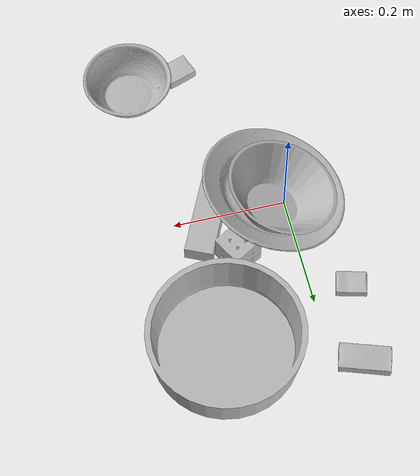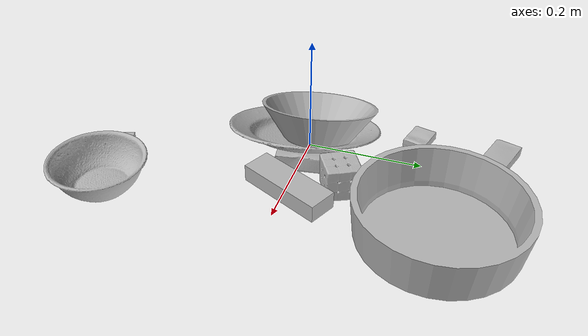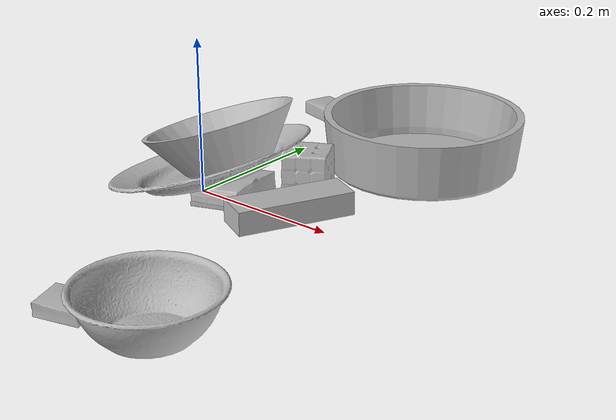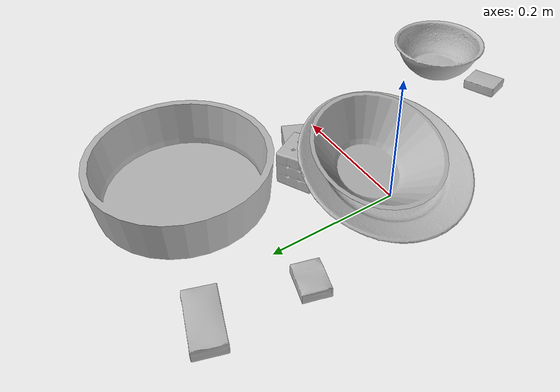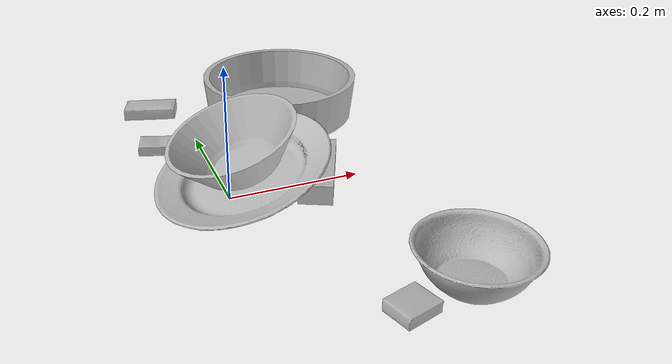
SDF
<sdf version="1.4">
  <world name="default">
    <light name="light1" type="point">
      <pose>0 0 1 0 0 0</pose>
      <diffuse>3 3 3 1</diffuse>
      <specular>3 3 3 1</specular>
    </light>
    <light name="light2" type="point">
      <pose>0 0.5 2 0 0 0</pose>
      <diffuse>1 1 1 1</diffuse>
      <specular>1 1 1 1</specular>
    </light>
    <light name="light3" type="point">
      <pose>0 0.5 2 0 0 0</pose>
      <diffuse>3 3 3 1</diffuse>
      <specular>3 3 3 1</specular>
    </light>
    <scene>
      <ambient>0.7 0.7 0.7</ambient>
    </scene>
    <model name="box1">
      <link name="link_box1">
        <collision name="default">
          <geometry>
            <mesh>
              <uri>model://sugar_box/collision_meshes/collision.obj</uri>
              <scale>0.5 0.5 0.5</scale>
            </mesh>
          </geometry>
          <surface>
            <friction>
              <ode>
                <mu>0.5</mu>
                <mu2>0.5</mu2>
              </ode>
            </friction>
          <contact>
        <ode>
            <max_vel>0</max_vel>
            <min_depth>0.0001</min_depth>
            <kp>1e8</kp>
        </ode>
    </contact></surface>
        </collision>
        <visual name="default">
          <geometry>
            <mesh>
              <uri>model://sugar_box/visual_meshes/visual.dae</uri>
              <scale>0.5 0.5 0.5</scale>
            </mesh>
          </geometry>
        </visual>
        <inertial>
          <mass>0.05968111753463745</mass>
          <pose>0.0005171863595023751 1.924554817378521e-05 -0.00018182402709499002 -0.00040462627153530444 0.0010506635220302928 0.002615378323275012</pose>
          <inertia>
            <ixx>1.2431535e-05</ixx>
            <iyy>4.0181283e-05</iyy>
            <izz>4.8101785e-05</izz>
            <ixy>0</ixy>
            <ixz>0</ixz>
            <iyz>0</iyz>
          </inertia>
        </inertial>
      </link>
      <pose>-0.05030158907175064 0.32458773255348206 0.011399301700294018 0.0007751953166375443 -0.023433188696687257 -0.3265858133132676</pose>
    </model>
    <model name="box11">
      <link name="link_box11">
        <collision name="default">
          <geometry>
            <mesh>
              <uri>model://cracker_box/collision_meshes/collision.obj</uri>
              <scale>0.25 0.25 0.25</scale>
            </mesh>
          </geometry>
          <surface>
            <friction>
              <ode>
                <mu>0.5</mu>
                <mu2>0.5</mu2>
              </ode>
            </friction>
          <contact>
        <ode>
            <max_vel>0</max_vel>
            <min_depth>0.0001</min_depth>
            <kp>1e8</kp>
        </ode>
    </contact></surface>
        </collision>
        <visual name="default">
          <geometry>
            <mesh>
              <uri>model://cracker_box/visual_meshes/visual.dae</uri>
              <scale>0.25 0.25 0.25</scale>
            </mesh>
          </geometry>
        </visual>
        <inertial>
          <mass>0.04741516709327698</mass>
          <pose>0.0002366035187151283 6.358561950037256e-05 -0.0004257383698131889 -0.00031620780351981393 -0.01110649053153066 0.0025467950031323855</pose>
          <inertia>
            <ixx>7.537689e-06</ixx>
            <iyy>1.2446206e-05</iyy>
            <izz>1.7761875e-05</izz>
            <ixy>0</ixy>
            <ixz>0</ixz>
            <iyz>0</iyz>
          </inertia>
        </inertial>
      </link>
      <pose>-0.06855029612779617 0.18576669692993164 0.009096026420593262 -0.014050366487063473 -0.005016787792297237 2.8607588222989193</pose>
    </model>
    <model name="box2">
      <link name="link_box2">
        <collision name="default">
          <geometry>
            <mesh>
              <uri>model://jenga/collision_meshes/collision.obj</uri>
              <scale>1.0 1.0 1.0</scale>
            </mesh>
          </geometry>
          <surface>
            <friction>
              <ode>
                <mu>0.5</mu>
                <mu2>0.5</mu2>
              </ode>
            </friction>
          <contact>
        <ode>
            <max_vel>0</max_vel>
            <min_depth>0.0001</min_depth>
            <kp>1e8</kp>
        </ode>
    </contact></surface>
        </collision>
        <visual name="default">
          <geometry>
            <mesh>
              <uri>model://jenga/visual_meshes/visual.dae</uri>
              <scale>1.0 1.0 1.0</scale>
            </mesh>
          </geometry>
        </visual>
        <inertial>
          <mass>0.17569443583488464</mass>
          <pose>-2.502855807051674e-07 -0.00010250010382151231 -4.0923401684267446e-05 0.0 -7.342153480750062e-07 0.0</pose>
          <inertia>
            <ixx>4.8618913e-05</ixx>
            <iyy>0.00032944046</iyy>
            <izz>0.0003517057</izz>
            <ixy>0</ixy>
            <ixz>0</ixz>
            <iyz>0</iyz>
          </inertia>
        </inertial>
      </link>
      <pose>0.1403197944164276 0.006949514150619507 0.01500012632459402 4.624020830907679e-05 -1.9794153063166026e-06 1.1277098677455002</pose>
    </model>
    <model name="box21">
      <link name="link_box21">
        <collision name="default">
          <geometry>
            <mesh>
              <uri>model://rubiks_cube/collision_meshes/collision.obj</uri>
              <scale>1.0 1.0 1.0</scale>
            </mesh>
          </geometry>
          <surface>
            <friction>
              <ode>
                <mu>0.5</mu>
                <mu2>0.5</mu2>
              </ode>
            </friction>
          <contact>
        <ode>
            <max_vel>0</max_vel>
            <min_depth>0.0001</min_depth>
            <kp>1e8</kp>
        </ode>
    </contact></surface>
        </collision>
        <visual name="default">
          <geometry>
            <mesh>
              <uri>model://rubiks_cube/visual_meshes/visual.dae</uri>
              <scale>1.0 1.0 1.0</scale>
            </mesh>
          </geometry>
        </visual>
        <inertial>
          <mass>0.16427944600582123</mass>
          <pose>2.6721041649580002e-05 5.2569666877388954e-05 -7.2643156272533815e-06 -0.05467299197426534 -0.0981400693449792 -0.034455479534688374</pose>
          <inertia>
            <ixx>9.0775415e-05</ixx>
            <iyy>9.0352085e-05</iyy>
            <izz>9.152764e-05</izz>
            <ixy>0</ixy>
            <ixz>0</ixz>
            <iyz>0</iyz>
          </inertia>
        </inertial>
      </link>
      <pose>0.10484202206134796 0.08350834250450134 0.02867896854877472 5.669571839306368e-05 2.8034650757222113e-05 -2.647301556390751</pose>
    </model>
    <model name="box3">
      <link name="link_box3">
        <collision name="default">
          <geometry>
            <mesh>
              <uri>model://gelatin_box/collision_meshes/collision.obj</uri>
              <scale>1.0 1.0 1.0</scale>
            </mesh>
          </geometry>
          <surface>
            <friction>
              <ode>
                <mu>0.5</mu>
                <mu2>0.5</mu2>
              </ode>
            </friction>
          <contact>
        <ode>
            <max_vel>0</max_vel>
            <min_depth>0.0001</min_depth>
            <kp>1e8</kp>
        </ode>
    </contact></surface>
        </collision>
        <visual name="default">
          <geometry>
            <mesh>
              <uri>model://gelatin_box/visual_meshes/visual.dae</uri>
              <scale>1.0 1.0 1.0</scale>
            </mesh>
          </geometry>
        </visual>
        <inertial>
          <mass>0.21197354793548584</mass>
          <pose>0.0004319618456065655 0.00011156872642459348 -0.0003640321083366871 -0.0010503719594585892 -0.004755818227500045 0.016440553882781303</pose>
          <inertia>
            <ixx>0.00014963602</ixx>
            <iyy>0.00010688423</iyy>
            <izz>0.00022777937</izz>
            <ixy>0</ixy>
            <ixz>0</ixz>
            <iyz>0</iyz>
          </inertia>
        </inertial>
      </link>
      <pose>0.04976006969809532 0.0029422701336443424 0.01642017252743244 -0.012907815184797276 -0.06499162353952535 0.16888368748882215</pose>
    </model>
    <model name="box31">
      <link name="link_box31">
        <collision name="default">
          <geometry>
            <mesh>
              <uri>model://pudding_box/collision_meshes/collision.obj</uri>
              <scale>0.5 0.5 0.5</scale>
            </mesh>
          </geometry>
          <surface>
            <friction>
              <ode>
                <mu>0.5</mu>
                <mu2>0.5</mu2>
              </ode>
            </friction>
          <contact>
        <ode>
            <max_vel>0</max_vel>
            <min_depth>0.0001</min_depth>
            <kp>1e8</kp>
        </ode>
    </contact></surface>
        </collision>
        <visual name="default">
          <geometry>
            <mesh>
              <uri>model://pudding_box/visual_meshes/visual.dae</uri>
              <scale>0.5 0.5 0.5</scale>
            </mesh>
          </geometry>
        </visual>
        <inertial>
          <mass>0.056796859949827194</mass>
          <pose>0.00024474109522998333 0.0004033942532259971 -0.0002594413817860186 0.005213102251005844 -0.00660379641961884 0.02007983447872704</pose>
          <inertia>
            <ixx>1.605148e-05</ixx>
            <iyy>1.0799551e-05</iyy>
            <izz>2.3704206e-05</izz>
            <ixy>0</ixy>
            <ixz>0</ixz>
            <iyz>0</iyz>
          </inertia>
        </inertial>
      </link>
      <pose>0.12253815680742264 -0.3138449788093567 0.009862903505563736 0.02234849085002439 -0.01139172174893557 1.8861843677034185</pose>
    </model>
    <model name="plate1">
      <link name="link_plate1">
        <collision name="default">
          <geometry>
            <mesh>
              <uri>model://pan_tefal/collision_meshes/collision.obj</uri>
              <scale>1.0 1.0 1.0</scale>
            </mesh>
          </geometry>
          <surface>
            <friction>
              <ode>
                <mu>0.5</mu>
                <mu2>0.5</mu2>
              </ode>
            </friction>
          <contact>
        <ode>
            <max_vel>0</max_vel>
            <min_depth>0.0001</min_depth>
            <kp>1e8</kp>
        </ode>
    </contact></surface>
        </collision>
        <visual name="default">
          <geometry>
            <mesh>
              <uri>model://pan_tefal/visual_meshes/visual.dae</uri>
              <scale>1.0 1.0 1.0</scale>
            </mesh>
          </geometry>
        </visual>
        <inertial>
          <mass>1.4752264022827148</mass>
          <pose>-0.0001800210156943649 3.278951771790162e-05 -0.008514936082065105 0.0008190241607511121 -0.0003301478392365544 -0.33184922825406304</pose>
          <inertia>
            <ixx>0.010183416</ixx>
            <iyy>0.01024907</iyy>
            <izz>0.018745707</izz>
            <ixy>0</ixy>
            <ixz>0</ixz>
            <iyz>0</iyz>
          </inertia>
        </inertial>
      </link>
      <pose>0.16638949513435364 0.2479756772518158 0.038050007075071335 1.2374934462888777e-08 -1.3173159166604797e-08 -2.059546927698871</pose>
    </model>
    <model name="bowl1">
      <link name="link_bowl1">
        <collision name="default">
          <geometry>
            <mesh>
              <uri>model://bowl/collision_meshes/collision.obj</uri>
              <scale>1.0 1.0 1.0</scale>
            </mesh>
          </geometry>
          <surface>
            <friction>
              <ode>
                <mu>0.5</mu>
                <mu2>0.5</mu2>
              </ode>
            </friction>
          <contact>
        <ode>
            <max_vel>0</max_vel>
            <min_depth>0.0001</min_depth>
            <kp>1e8</kp>
        </ode>
    </contact></surface>
        </collision>
        <visual name="default">
          <geometry>
            <mesh>
              <uri>model://bowl/visual_meshes/visual.dae</uri>
              <scale>1.0 1.0 1.0</scale>
            </mesh>
          </geometry>
        </visual>
        <inertial>
          <mass>0.13335108757019043</mass>
          <pose>0.00020445126574486494 -0.0010302079608663917 -0.0008042646804824471 -0.01576397865263616 0.014546905041115984 0.7140477796865206</pose>
          <inertia>
            <ixx>0.000306318</ixx>
            <iyy>0.00029947367</iyy>
            <izz>0.00051533245</izz>
            <ixy>0</ixy>
            <ixz>0</ixz>
            <iyz>0</iyz>
          </inertia>
        </inertial>
      </link>
      <pose>0.21944914758205414 -0.29018262028694153 0.027779998257756233 -9.043072087275317e-09 2.1581122688713634e-08 0.2940637686219238</pose>
    </model>
    <model name="plate2">
      <link name="link_plate2">
        <collision name="default">
          <geometry>
            <mesh>
              <uri>model://plate/collision_meshes/collision.obj</uri>
              <scale>1.0 1.0 1.0</scale>
            </mesh>
          </geometry>
          <surface>
            <friction>
              <ode>
                <mu>0.5</mu>
                <mu2>0.5</mu2>
              </ode>
            </friction>
          <contact>
        <ode>
            <max_vel>0</max_vel>
            <min_depth>0.0001</min_depth>
            <kp>1e8</kp>
        </ode>
    </contact></surface>
        </collision>
        <visual name="default">
          <geometry>
            <mesh>
              <uri>model://plate/visual_meshes/visual.dae</uri>
              <scale>1.0 1.0 1.0</scale>
            </mesh>
          </geometry>
        </visual>
        <inertial>
          <mass>0.1753290891647339</mass>
          <pose>-0.0006044620531611145 0.0002782598021440208 -0.0010561987292021513 0.0022188066246853514 -0.003225466953145419 0.45260347799947726</pose>
          <inertia>
            <ixx>0.00082019315</ixx>
            <iyy>0.00081234827</iyy>
            <izz>0.0016041752</izz>
            <ixy>0</ixy>
            <ixz>0</ixz>
            <iyz>0</iyz>
          </inertia>
        </inertial>
      </link>
      <pose>0.021189697086811066 -0.003132912563160062 0.04271542653441429 0.21510614703432593 0.21788926283245336 -2.2092182916328595</pose>
    </model>
    <model name="bowl2">
      <link name="link_bowl2">
        <collision name="default">
          <geometry>
            <mesh>
              <uri>model://bowl_a/collision_meshes/collision.obj</uri>
              <scale>1.0 1.0 1.0</scale>
            </mesh>
          </geometry>
          <surface>
            <friction>
              <ode>
                <mu>0.5</mu>
                <mu2>0.5</mu2>
              </ode>
            </friction>
          <contact>
        <ode>
            <max_vel>0</max_vel>
            <min_depth>0.0001</min_depth>
            <kp>1e8</kp>
        </ode>
    </contact></surface>
        </collision>
        <visual name="default">
          <geometry>
            <mesh>
              <uri>model://bowl_a/visual_meshes/visual.dae</uri>
              <scale>1.0 1.0 1.0</scale>
            </mesh>
          </geometry>
        </visual>
        <inertial>
          <mass>0.4813200831413269</mass>
          <pose>0.0002786751138046384 4.731064836960286e-05 -0.0013765294570475817 -0.0009805320964546374 -0.0010938264681851768 -0.19124047933057892</pose>
          <inertia>
            <ixx>0.0013703406</ixx>
            <iyy>0.0013787533</iyy>
            <izz>0.0024372027</izz>
            <ixy>0</ixy>
            <ixz>0</ixz>
            <iyz>0</iyz>
          </inertia>
        </inertial>
      </link>
      <pose>0.01940852217376232 0.02063162438571453 0.065081387758255 -0.2138898489484729 0.2304394119187456 2.482974303794898</pose>
    </model>
  <physics type="ode">
      <max_contacts>50</max_contacts>
      <ode>
        <solver>
          <type>quick</type>
          <iters>75</iters>
        </solver>
        <constraints>
          <contact_max_correcting_vel>0</contact_max_correcting_vel>
          <contact_surface_layer>0</contact_surface_layer>
        </constraints>
      </ode>
    </physics></world>
</sdf>
